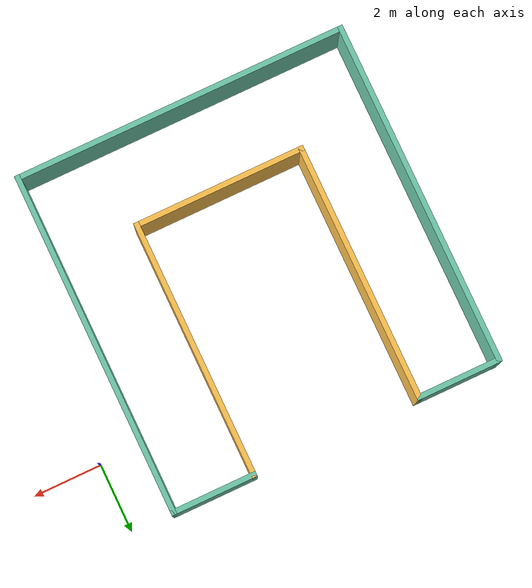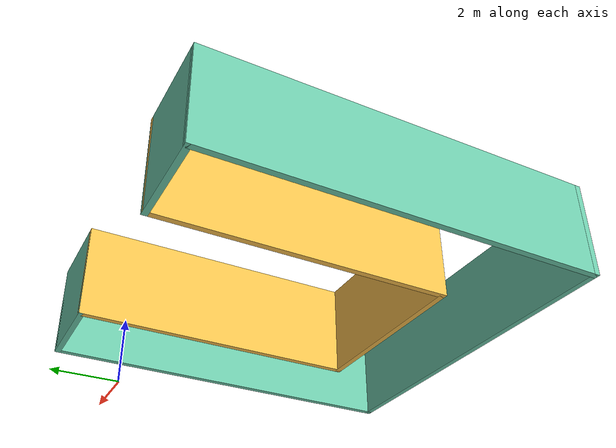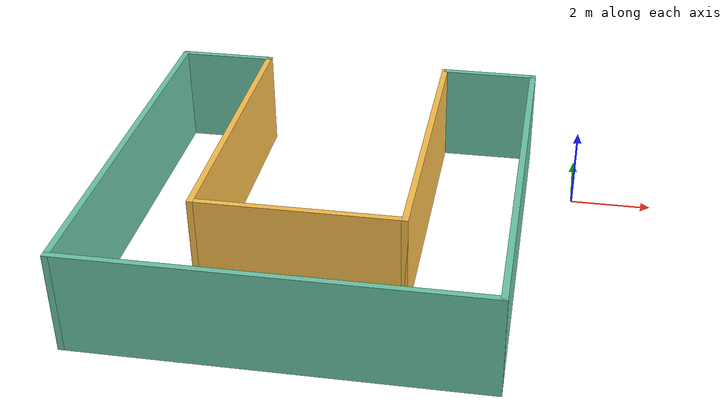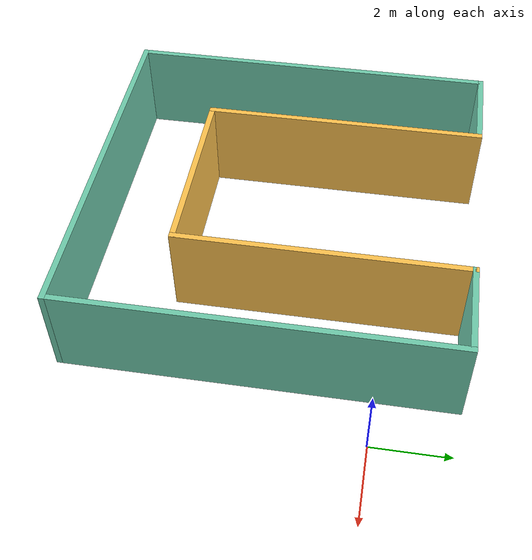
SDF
<?xml version='1.0'?>
<sdf version='1.6'>
  <model name='mybuilding'>
    <pose frame=''>-6.06094 -2.8498 0 0 -0 0</pose>
    <link name='Wall_10'>
      <collision name='Wall_10_Collision'>
        <geometry>
          <box>
            <size>10 0.15 2.5</size>
          </box>
        </geometry>
        <pose frame=''>0 0 1.25 0 -0 0</pose>
      </collision>
      <visual name='Wall_10_Visual'>
        <pose frame=''>0 0 1.25 0 -0 0</pose>
        <geometry>
          <box>
            <size>10 0.15 2.5</size>
          </box>
        </geometry>
        <material>
          <script>
            <uri>file://media/materials/scripts/gazebo.material</uri>
            <name>Gazebo/Grey</name>
          </script>
          <ambient>0.435294 0.796078 0.67451 1</ambient>
        </material>
        <meta>
          <layer>0</layer>
        </meta>
      </visual>
      <pose frame=''>4.775 0 0 0 0 -1.5708</pose>
    </link>
    <link name='Wall_11'>
      <collision name='Wall_11_Collision'>
        <geometry>
          <box>
            <size>9.7 0.15 2.5</size>
          </box>
        </geometry>
        <pose frame=''>0 0 1.25 0 -0 0</pose>
      </collision>
      <visual name='Wall_11_Visual'>
        <pose frame=''>0 0 1.25 0 -0 0</pose>
        <geometry>
          <box>
            <size>9.7 0.15 2.5</size>
          </box>
        </geometry>
        <material>
          <script>
            <uri>file://media/materials/scripts/gazebo.material</uri>
            <name>Gazebo/Grey</name>
          </script>
          <ambient>0.435294 0.796078 0.67451 1</ambient>
        </material>
        <meta>
          <layer>0</layer>
        </meta>
      </visual>
      <pose frame=''>0 -4.925 0 0 -0 3.14159</pose>
    </link>
    <link name='Wall_3'>
      <collision name='Wall_3_Collision'>
        <geometry>
          <box>
            <size>10 0.15 2.5</size>
          </box>
        </geometry>
        <pose frame=''>0 0 1.25 0 -0 0</pose>
      </collision>
      <visual name='Wall_3_Visual'>
        <pose frame=''>0 0 1.25 0 -0 0</pose>
        <geometry>
          <box>
            <size>10 0.15 2.5</size>
          </box>
        </geometry>
        <material>
          <script>
            <uri>file://media/materials/scripts/gazebo.material</uri>
            <name>Gazebo/Grey</name>
          </script>
          <ambient>0.435294 0.796078 0.67451 1</ambient>
        </material>
        <meta>
          <layer>0</layer>
        </meta>
      </visual>
      <pose frame=''>-4.775 0 0 0 -0 1.5708</pose>
    </link>
    <link name='Wall_5'>
      <collision name='Wall_5_Collision'>
        <geometry>
          <box>
            <size>2.5 0.15 2.5</size>
          </box>
        </geometry>
        <pose frame=''>0 0 1.25 0 -0 0</pose>
      </collision>
      <visual name='Wall_5_Visual'>
        <pose frame=''>0 0 1.25 0 -0 0</pose>
        <geometry>
          <box>
            <size>2.5 0.15 2.5</size>
          </box>
        </geometry>
        <material>
          <script>
            <uri>file://media/materials/scripts/gazebo.material</uri>
            <name>Gazebo/Grey</name>
          </script>
          <ambient>0.435294 0.796078 0.67451 1</ambient>
        </material>
        <meta>
          <layer>0</layer>
        </meta>
      </visual>
      <pose frame=''>-3.6 4.925 0 0 -0 0</pose>
    </link>
    <link name='Wall_6'>
      <collision name='Wall_6_Collision'>
        <geometry>
          <box>
            <size>7.5 0.15 2.5</size>
          </box>
        </geometry>
        <pose frame=''>0 0 1.25 0 -0 0</pose>
      </collision>
      <visual name='Wall_6_Visual'>
        <pose frame=''>0 0 1.25 0 -0 0</pose>
        <geometry>
          <box>
            <size>7.5 0.15 2.5</size>
          </box>
        </geometry>
        <material>
          <script>
            <uri>file://media/materials/scripts/gazebo.material</uri>
            <name>Gazebo/Grey</name>
          </script>
          <ambient>1 0.764706 0.305882 1</ambient>
        </material>
        <meta>
          <layer>0</layer>
        </meta>
      </visual>
      <pose frame=''>-2.425 1.25 0 0 0 -1.5708</pose>
    </link>
    <link name='Wall_7'>
      <collision name='Wall_7_Collision'>
        <geometry>
          <box>
            <size>5 0.15 2.5</size>
          </box>
        </geometry>
        <pose frame=''>0 0 1.25 0 -0 0</pose>
      </collision>
      <visual name='Wall_7_Visual'>
        <pose frame=''>0 0 1.25 0 -0 0</pose>
        <geometry>
          <box>
            <size>5 0.15 2.5</size>
          </box>
        </geometry>
        <material>
          <script>
            <uri>file://media/materials/scripts/gazebo.material</uri>
            <name>Gazebo/Grey</name>
          </script>
          <ambient>1 0.764706 0.305882 1</ambient>
        </material>
        <meta>
          <layer>0</layer>
        </meta>
      </visual>
      <pose frame=''>0 -2.425 0 0 -0 0</pose>
    </link>
    <link name='Wall_8'>
      <collision name='Wall_8_Collision'>
        <geometry>
          <box>
            <size>7.5 0.15 2.5</size>
          </box>
        </geometry>
        <pose frame=''>0 0 1.25 0 -0 0</pose>
      </collision>
      <visual name='Wall_8_Visual'>
        <pose frame=''>0 0 1.25 0 -0 0</pose>
        <geometry>
          <box>
            <size>7.5 0.15 2.5</size>
          </box>
        </geometry>
        <material>
          <script>
            <uri>file://media/materials/scripts/gazebo.material</uri>
            <name>Gazebo/Grey</name>
          </script>
          <ambient>1 0.764706 0.305882 1</ambient>
        </material>
        <meta>
          <layer>0</layer>
        </meta>
      </visual>
      <pose frame=''>2.425 1.25 0 0 -0 1.5708</pose>
    </link>
    <link name='Wall_9'>
      <collision name='Wall_9_Collision'>
        <geometry>
          <box>
            <size>2.5 0.15 2.5</size>
          </box>
        </geometry>
        <pose frame=''>0 0 1.25 0 -0 0</pose>
      </collision>
      <visual name='Wall_9_Visual'>
        <pose frame=''>0 0 1.25 0 -0 0</pose>
        <geometry>
          <box>
            <size>2.5 0.15 2.5</size>
          </box>
        </geometry>
        <material>
          <script>
            <uri>file://media/materials/scripts/gazebo.material</uri>
            <name>Gazebo/Grey</name>
          </script>
          <ambient>0.435294 0.796078 0.67451 1</ambient>
        </material>
        <meta>
          <layer>0</layer>
        </meta>
      </visual>
      <pose frame=''>3.6 4.925 0 0 -0 0</pose>
    </link>
    <static>1</static>
  </model>
</sdf>
